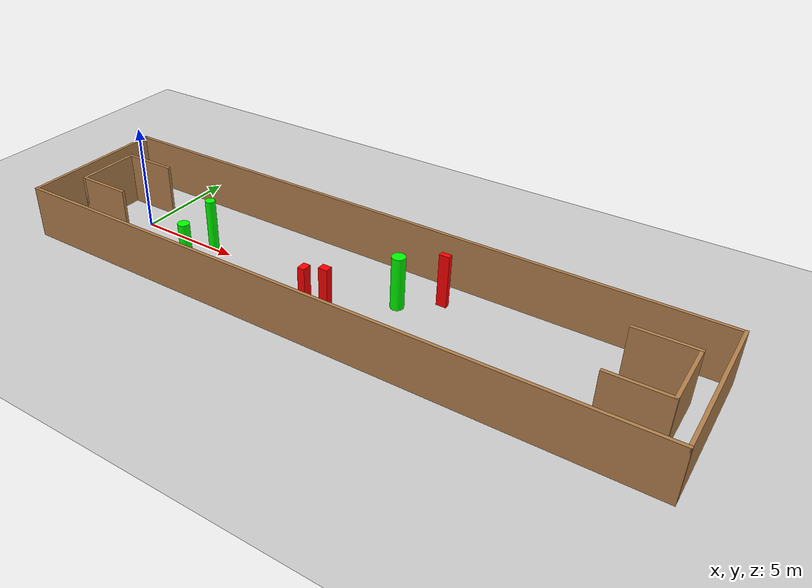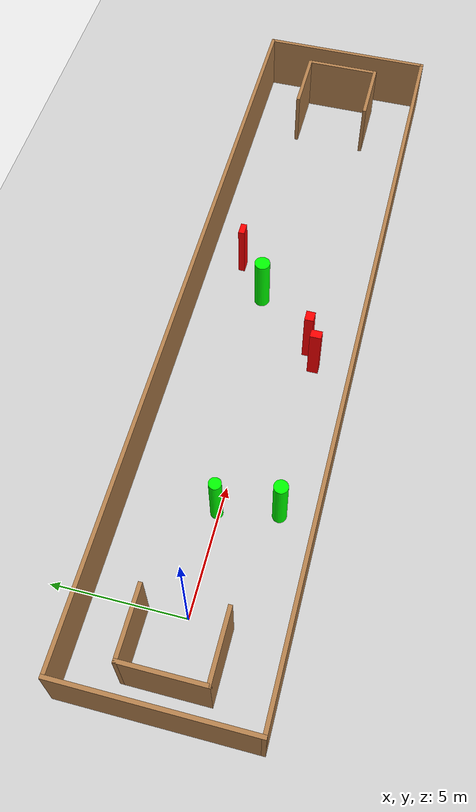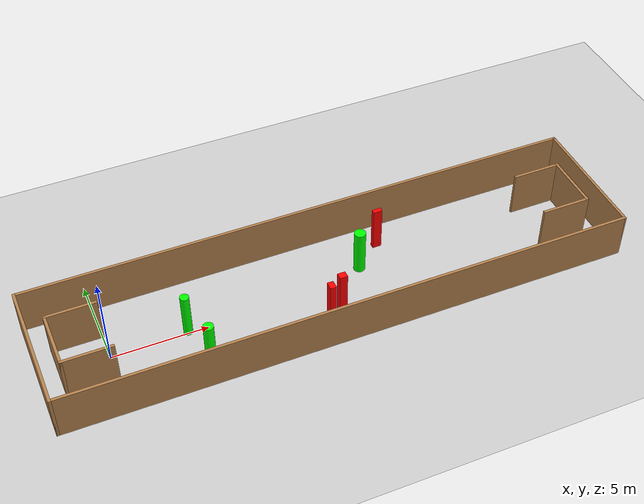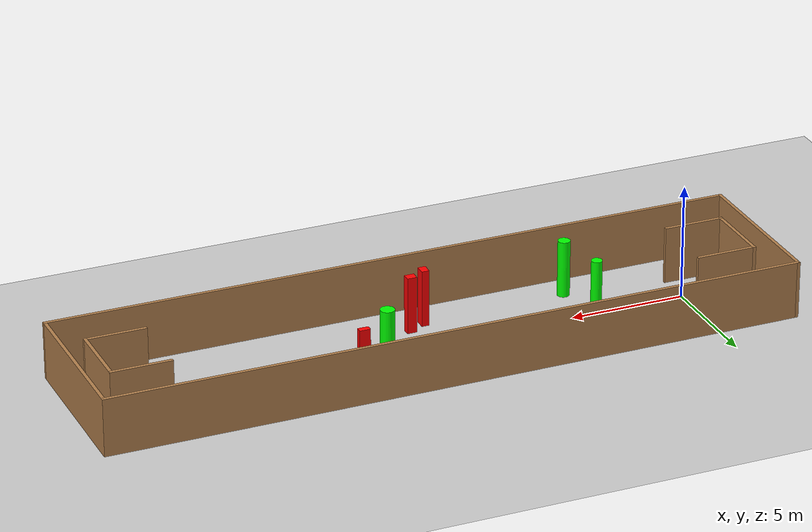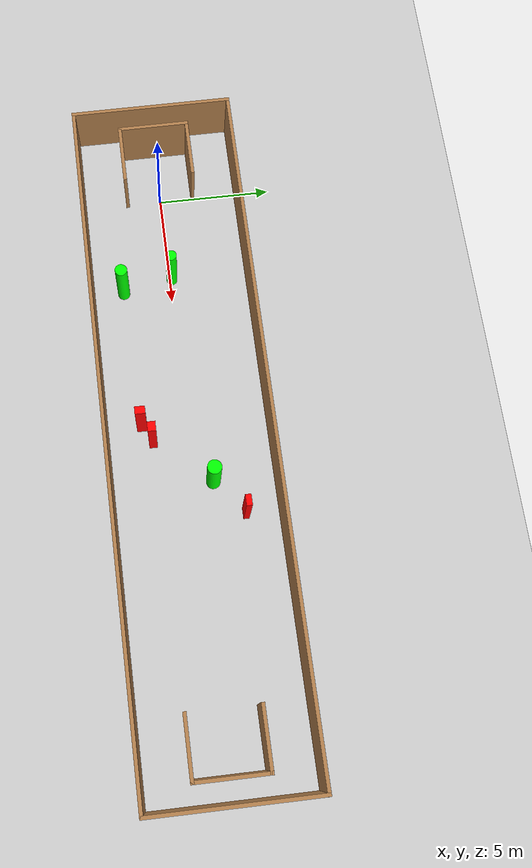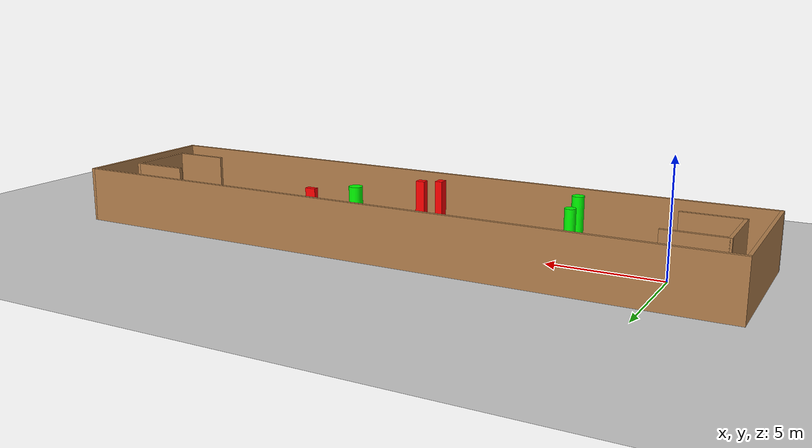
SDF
<sdf version="1.7">
 <world name="default">
  <light name="sun" type="directional">
   <pose>0 0 10 0 -0 0</pose>
   <diffuse>0.8 0.8 0.8 1</diffuse>
   <specular>0.2 0.2 0.2 1</specular>
   <attenuation>
    <range>1000</range>
    <constant>0.9</constant>
    <linear>0.01</linear>
    <quadratic>0.001</quadratic>
   </attenuation>
   <direction>-0.5 0.1 -0.9</direction>
   <spot><inner_angle>0</inner_angle><outer_angle>0</outer_angle><falloff>0</falloff></spot>
  </light>
  <model name="ground_plane">
   <static>1</static>
   <link name="link">
    <collision name="collision">
     <geometry><plane><normal>0 0 1</normal><size>100 100</size></plane></geometry>
     <surface>
      <contact><collide_bitmask>65535</collide_bitmask></contact>
      <friction><ode><mu>100</mu><mu2>50</mu2></ode></friction>
     </surface>
    </collision>
    <visual name="visual">
     <cast_shadows>0</cast_shadows>
     <geometry><plane><normal>0 0 1</normal><size>100 100</size></plane></geometry>
     <material>
      <script><uri>file://media/materials/scripts/gazebo.material</uri><name>Gazebo/Grey</name></script>
     </material>
    </visual>
   </link>
  </model>
  <gravity>0 0 -9.8</gravity>
  <magnetic_field>6e-06 2.3e-05 -4.2e-05</magnetic_field>
  <atmosphere type="adiabatic"/>
  <physics type="ode">
   <max_step_size>0.001</max_step_size>
   <real_time_factor>1</real_time_factor>
   <real_time_update_rate>1000</real_time_update_rate>
  </physics>
  <scene><ambient>0.4 0.4 0.4 1</ambient><background>0.7 0.7 0.7 1</background><shadows>1</shadows></scene>
  <spherical_coordinates>
   <surface_model>EARTH_WGS84</surface_model>
   <latitude_deg>0</latitude_deg>
   <longitude_deg>0</longitude_deg>
   <elevation>0</elevation>
   <heading_deg>0</heading_deg>
  </spherical_coordinates>
  <model name="my_base_walls">
   <link name="Wall_0">
    <collision name="Wall_0_Collision">
     <geometry><box><size>7.15 0.15 2.5</size></box></geometry>
     <pose>0 0 1.25 0 -0 0</pose>
    </collision>
    <visual name="Wall_0_Visual">
     <pose>0 0 1.25 0 -0 0</pose>
     <geometry><box><size>7.15 0.15 2.5</size></box></geometry>
     <material>
      <script><uri>file://media/materials/scripts/gazebo.material</uri><name>Gazebo/Wood</name></script>
      <ambient>1 1 1 1</ambient>
     </material>
     <meta><layer>0</layer></meta>
    </visual>
    <pose>-15 0 0 0 -0 1.5708</pose>
   </link>
   <link name="Wall_10">
    <collision name="Wall_10_Collision">
     <geometry><box><size>2.65 0.15 2.5</size></box></geometry>
     <pose>0 0 1.25 0 -0 0</pose>
    </collision>
    <visual name="Wall_10_Visual">
     <pose>0 0 1.25 0 -0 0</pose>
     <geometry><box><size>2.65 0.15 2.5</size></box></geometry>
     <material>
      <script><uri>file://media/materials/scripts/gazebo.material</uri><name>Gazebo/Wood</name></script>
      <ambient>1 1 1 1</ambient>
     </material>
     <meta><layer>0</layer></meta>
    </visual>
    <pose>-12.75 -1.5 0 0 -0 0</pose>
   </link>
   <link name="Wall_12">
    <collision name="Wall_12_Collision">
     <geometry><box><size>2.65 0.15 2.5</size></box></geometry>
     <pose>0 0 1.25 0 -0 0</pose>
    </collision>
    <visual name="Wall_12_Visual">
     <pose>0 0 1.25 0 -0 0</pose>
     <geometry><box><size>2.65 0.15 2.5</size></box></geometry>
     <material>
      <script><uri>file://media/materials/scripts/gazebo.material</uri><name>Gazebo/Wood</name></script>
      <ambient>1 1 1 1</ambient>
     </material>
     <meta><layer>0</layer></meta>
    </visual>
    <pose>-12.75 1.5 0 0 -0 0</pose>
   </link>
   <link name="Wall_14">
    <collision name="Wall_14_Collision">
     <geometry><box><size>3.15 0.15 2.5</size></box></geometry>
     <pose>0 0 1.25 0 -0 0</pose>
    </collision>
    <visual name="Wall_14_Visual">
     <pose>0 0 1.25 0 -0 0</pose>
     <geometry><box><size>3.15 0.15 2.5</size></box></geometry>
     <material>
      <script><uri>file://media/materials/scripts/gazebo.material</uri><name>Gazebo/Wood</name></script>
      <ambient>1 1 1 1</ambient>
     </material>
     <meta><layer>0</layer></meta>
    </visual>
    <pose>14 0 0 0 -0 -1.5708</pose>
   </link>
   <link name="Wall_15">
    <collision name="Wall_15_Collision">
     <geometry><box><size>2.65 0.15 2.5</size></box></geometry>
     <pose>0 0 1.25 0 -0 0</pose>
    </collision>
    <visual name="Wall_15_Visual">
     <pose>0 0 1.25 0 -0 0</pose>
     <geometry><box><size>2.65 0.15 2.5</size></box></geometry>
     <material>
      <script><uri>file://media/materials/scripts/gazebo.material</uri><name>Gazebo/Wood</name></script>
      <ambient>1 1 1 1</ambient>
     </material>
     <meta><layer>0</layer></meta>
    </visual>
    <pose>12.75 -1.5 0 0 -0 3.14159</pose>
   </link>
   <link name="Wall_17">
    <collision name="Wall_17_Collision">
     <geometry><box><size>2.65 0.15 2.5</size></box></geometry>
     <pose>0 0 1.25 0 -0 0</pose>
    </collision>
    <visual name="Wall_17_Visual">
     <pose>0 0 1.25 0 -0 0</pose>
     <geometry><box><size>2.65 0.15 2.5</size></box></geometry>
     <material>
      <script><uri>file://media/materials/scripts/gazebo.material</uri><name>Gazebo/Wood</name></script>
      <ambient>1 1 1 1</ambient>
     </material>
     <meta><layer>0</layer></meta>
    </visual>
    <pose>12.75 1.5 0 0 -0 3.14159</pose>
   </link>
   <link name="Wall_2">
    <collision name="Wall_2_Collision">
     <geometry><box><size>30.15 0.15 2.5</size></box></geometry>
     <pose>0 0 1.25 0 -0 0</pose>
    </collision>
    <visual name="Wall_2_Visual">
     <pose>0 0 1.25 0 -0 0</pose>
     <geometry><box><size>30.15 0.15 2.5</size></box></geometry>
     <material>
      <script><uri>file://media/materials/scripts/gazebo.material</uri><name>Gazebo/Wood</name></script>
      <ambient>1 1 1 1</ambient>
     </material>
     <meta><layer>0</layer></meta>
    </visual>
    <pose>-0 -3.5 0 0 -0 0</pose>
   </link>
   <link name="Wall_4">
    <collision name="Wall_4_Collision">
     <geometry><box><size>30.15 0.15 2.5</size></box></geometry>
     <pose>0 0 1.25 0 -0 0</pose>
    </collision>
    <visual name="Wall_4_Visual">
     <pose>0 0 1.25 0 -0 0</pose>
     <geometry><box><size>30.15 0.15 2.5</size></box></geometry>
     <material>
      <script><uri>file://media/materials/scripts/gazebo.material</uri><name>Gazebo/Wood</name></script>
      <ambient>1 1 1 1</ambient>
     </material>
     <meta><layer>0</layer></meta>
    </visual>
    <pose>-0 3.5 0 0 -0 0</pose>
   </link>
   <link name="Wall_6">
    <collision name="Wall_6_Collision">
     <geometry><box><size>7.15 0.15 2.5</size></box></geometry>
     <pose>0 0 1.25 0 -0 0</pose>
    </collision>
    <visual name="Wall_6_Visual">
     <pose>0 0 1.25 0 -0 0</pose>
     <geometry><box><size>7.15 0.15 2.5</size></box></geometry>
     <material>
      <script><uri>file://media/materials/scripts/gazebo.material</uri><name>Gazebo/Wood</name></script>
      <ambient>1 1 1 1</ambient>
     </material>
     <meta><layer>0</layer></meta>
    </visual>
    <pose>15 0 0 0 -0 -1.5708</pose>
   </link>
   <link name="Wall_9">
    <collision name="Wall_9_Collision">
     <geometry><box><size>3.15 0.15 2.5</size></box></geometry>
     <pose>0 0 1.25 0 -0 0</pose>
    </collision>
    <visual name="Wall_9_Visual">
     <pose>0 0 1.25 0 -0 0</pose>
     <geometry><box><size>3.15 0.15 2.5</size></box></geometry>
     <material>
      <script><uri>file://media/materials/scripts/gazebo.material</uri><name>Gazebo/Wood</name></script>
      <ambient>1 1 1 1</ambient>
     </material>
     <meta><layer>0</layer></meta>
    </visual>
    <pose>-14 0 0 0 -0 -1.5708</pose>
   </link>
   <static>1</static>
   <pose>11.5 0 0 0 -0 0</pose>
  </model>
  <model name="cylinder1">
   <static>1</static>
   <link name="link">
    <inertial>
     <mass>1</mass>
     <inertia><ixx>0.5</ixx><ixy>0</ixy><ixz>0</ixz><iyy>0.5</iyy><iyz>0</iyz><izz>1</izz></inertia>
    </inertial>
    <collision name="collision">
     <geometry><cylinder><radius>0.3055025447411405</radius><length>2.5</length></cylinder></geometry>
    </collision>
    <visual name="visual">
     <geometry><cylinder><radius>0.3055025447411405</radius><length>2.5</length></cylinder></geometry>
     <material>
      <ambient>0 1 0 1</ambient>
      <diffuse>0 1 0 1</diffuse>
      <specular>0.1 0.1 0.1 1</specular>
      <emissive>0 0 0 0</emissive>
     </material>
    </visual>
   </link>
   <pose>13.56689881448134 0.816740624230782 1.25 0 0 0</pose>
  </model>
  <model name="cylinder2">
   <static>1</static>
   <link name="link">
    <inertial>
     <mass>1</mass>
     <inertia><ixx>0.5</ixx><ixy>0</ixy><ixz>0</ixz><iyy>0.5</iyy><iyz>0</iyz><izz>1</izz></inertia>
    </inertial>
    <collision name="collision">
     <geometry><cylinder><radius>0.23458148182122607</radius><length>2.5</length></cylinder></geometry>
    </collision>
    <visual name="visual">
     <geometry><cylinder><radius>0.23458148182122607</radius><length>2.5</length></cylinder></geometry>
     <material>
      <ambient>0 1 0 1</ambient>
      <diffuse>0 1 0 1</diffuse>
      <specular>0.1 0.1 0.1 1</specular>
      <emissive>0 0 0 0</emissive>
     </material>
    </visual>
   </link>
   <pose>3.9808360182853253 0.10449051396118847 1.25 0 0 0</pose>
  </model>
  <model name="cylinder3">
   <static>1</static>
   <link name="link">
    <inertial>
     <mass>1</mass>
     <inertia><ixx>0.5</ixx><ixy>0</ixy><ixz>0</ixz><iyy>0.5</iyy><iyz>0</iyz><izz>1</izz></inertia>
    </inertial>
    <collision name="collision">
     <geometry><cylinder><radius>0.2659512284113065</radius><length>2.5</length></cylinder></geometry>
    </collision>
    <visual name="visual">
     <geometry><cylinder><radius>0.2659512284113065</radius><length>2.5</length></cylinder></geometry>
     <material>
      <ambient>0 1 0 1</ambient>
      <diffuse>0 1 0 1</diffuse>
      <specular>0.1 0.1 0.1 1</specular>
      <emissive>0 0 0 0</emissive>
     </material>
    </visual>
   </link>
   <pose>4.422411637907921 -2.112569392342443 1.25 0 0 0</pose>
  </model>
  <model name="box1">
   <static>1</static>
   <link name="link">
    <inertial>
     <mass>1</mass>
     <inertia><ixx>0.083</ixx><ixy>0</ixy><ixz>0</ixz><iyy>0.083</iyy><iyz>0</iyz><izz>0.083</izz></inertia>
    </inertial>
    <collision name="collision">
     <geometry><box><size>0.3294108243591046 0.4398098974616441 2.5</size></box></geometry>
    </collision>
    <visual name="visual">
     <geometry><box><size>0.3294108243591046 0.4398098974616441 2.5</size></box></geometry>
     <material>
      <ambient>1 0 0 1</ambient>
      <diffuse>1 0 0 1</diffuse>
      <specular>0.1 0.1 0.1 1</specular>
      <emissive>0 0 0 0</emissive>
     </material>
    </visual>
    <sensor name="my_contact" type="contact">
     <contact><collision>box_collision</collision><topic>__default_topic__</topic></contact>
    </sensor>
   </link>
   <pose>10.80754978171741 -1.9539653162998545 1.25 0 0 0</pose>
  </model>
  <model name="box2">
   <static>1</static>
   <link name="link">
    <inertial>
     <mass>1</mass>
     <inertia><ixx>0.083</ixx><ixy>0</ixy><ixz>0</ixz><iyy>0.083</iyy><iyz>0</iyz><izz>0.083</izz></inertia>
    </inertial>
    <collision name="collision">
     <geometry><box><size>0.41416856369044897 0.35254476454351863 2.5</size></box></geometry>
    </collision>
    <visual name="visual">
     <geometry><box><size>0.41416856369044897 0.35254476454351863 2.5</size></box></geometry>
     <material>
      <ambient>1 0 0 1</ambient>
      <diffuse>1 0 0 1</diffuse>
      <specular>0.1 0.1 0.1 1</specular>
      <emissive>0 0 0 0</emissive>
     </material>
    </visual>
    <sensor name="my_contact" type="contact">
     <contact><collision>box_collision</collision><topic>__default_topic__</topic></contact>
    </sensor>
   </link>
   <pose>11.556534707397162 -1.5492069519328484 1.25 0 0 0</pose>
  </model>
  <model name="box3">
   <static>1</static>
   <link name="link">
    <inertial>
     <mass>1</mass>
     <inertia><ixx>0.083</ixx><ixy>0</ixy><ixz>0</ixz><iyy>0.083</iyy><iyz>0</iyz><izz>0.083</izz></inertia>
    </inertial>
    <collision name="collision">
     <geometry><box><size>0.4733930545576997 0.24800569809951215 2.5</size></box></geometry>
    </collision>
    <visual name="visual">
     <geometry><box><size>0.4733930545576997 0.24800569809951215 2.5</size></box></geometry>
     <material>
      <ambient>1 0 0 1</ambient>
      <diffuse>1 0 0 1</diffuse>
      <specular>0.1 0.1 0.1 1</specular>
      <emissive>0 0 0 0</emissive>
     </material>
    </visual>
    <sensor name="my_contact" type="contact">
     <contact><collision>box_collision</collision><topic>__default_topic__</topic></contact>
    </sensor>
   </link>
   <pose>15.07836208036415 2.0129134217420823 1.25 0 0 0</pose>
  </model>
 </world>
</sdf>
